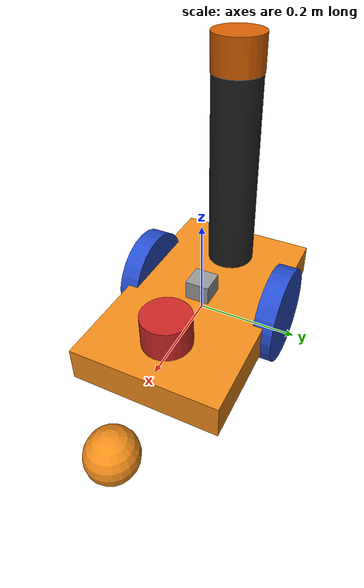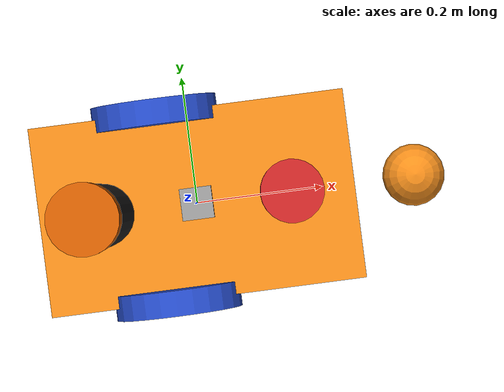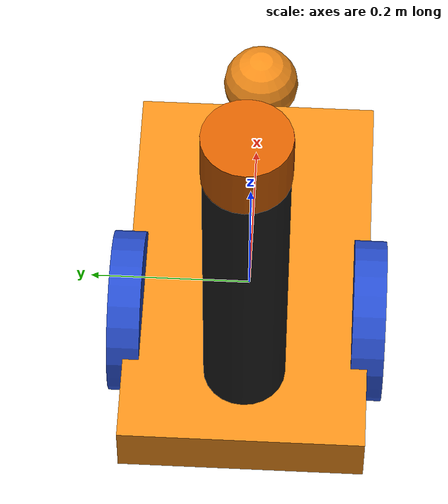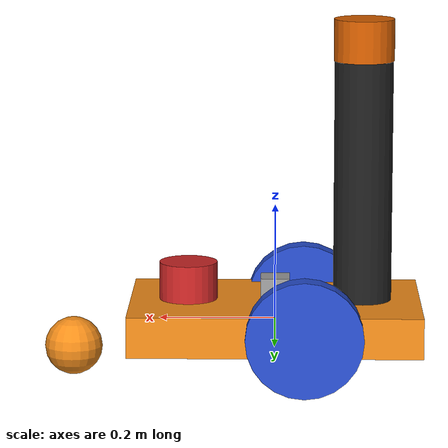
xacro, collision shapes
<?xml version="1.0" ?>
<robot name="m2wr"
    xmlns:xacro="https://www.ros.org/wiki/xacro">

    <!-- /////////////////////////////////////// Importing Urdf/Xacro Dependencies for the robot /////////////////////////////////////////////-->

    <xacro:include filename="$(find m2wr_description)/urdf/materials.xacro"/>
    <xacro:include filename="$(find m2wr_description)/urdf/m2wr.gazebo"/>
    <xacro:include filename="$(find m2wr_description)/urdf/macros.xacro"/>

    <!-- /////////////////////////////////////// Main Body /////////////////////////////////////////////-->
    <!-- CHASSIS -->
    <link name="link_chassis">
        <!-- pose and inertial -->
        <pose>0 0 0.1 0 0 0</pose>
        <inertial name="chassis_inertial">
            <mass value="5"/>
            <origin rpy="0 0 0" xyz="0 0 0.1"/>
            <inertia ixx="0.0395416666667" ixy="0" ixz="0" iyy="0.106208333333" iyz="0" izz="0.106208333333"/>
        </inertial>
        <!-- body -->
        <collision name="collision_chassis">
            <geometry>
                <box size="0.5 0.3 0.07"/>
            </geometry>
        </collision>
        <!-- Naming the visual defaults to white colour -->
        <visual>
            <origin rpy="0 0 0" xyz="0 0 0"/>
            <geometry>
                <box size="0.5 0.3 0.07"/>
            </geometry>
        </visual>
        <!-- FRONT CASTER WHEEL -->
        <inertial name="caster_front_inertial">
            <origin rpy=" 0 0 0" xyz="0.35 0 -0.05"/>
            <mass value="10.0"/>
            <inertia ixx="0.0" ixy="0.0" ixz="0.0" iyy="0.0" iyz="0.0" izz="0.0"/>
        </inertial>
        <collision name="caster_front_collision">
            <origin rpy=" 0 0 0" xyz="0.35 0 -0.05"/>
            <geometry>
                <sphere radius="0.05"/>
            </geometry>
            <surface>
                <friction>
                    <ode>
                        <mu>0</mu>
                        <mu2>0</mu2>
                        <slip1>1.0</slip1>
                        <slip2>1.0</slip2>
                    </ode>
                </friction>
            </surface>
        </collision>
        <visual name="caster_front_visual">
            <origin rpy=" 0 0 0" xyz="0.2 0 -0.05"/>
            <geometry>
                <sphere radius="0.05"/>
            </geometry>
        </visual>
    </link>

    <!-- WHEELS -->
    <xacro:link_wheel name="link_right_wheel"/>
    <xacro:joint_wheel name="joint_right_wheel" child="link_right_wheel" origin_xyz="-0.05 0.15 0"/>

    <xacro:link_wheel name="link_left_wheel"/>
    <xacro:joint_wheel name="joint_left_wheel" child="link_left_wheel" origin_xyz="-0.05 -0.15 0"/>
    <!-- /////////////////////////////////////// Laser Scanner /////////////////////////////////////////////-->
    <link name="sensor_laser">
        <inertial>
            <origin xyz="0 0 0" rpy="0 0 0" />
            <mass value="1" />
            <xacro:cylinder_inertia mass="1" r="0.05" l="0.1" />
        </inertial>

        <visual>
            <origin xyz="0 0 0" rpy="0 0 0" />
            <geometry>
                <cylinder radius="0.05" length="0.1"/>
            </geometry>
        </visual>

        <collision>
            <origin xyz="0 0 0" rpy="0 0 0"/>
            <geometry>
                <cylinder radius="0.05" length="0.1"/>
            </geometry>
        </collision>
    </link>

    <joint name="joint_sensor_laser" type="fixed">
        <origin xyz="0.15 0 0.05" rpy="0 0 0"/>
        <parent link="link_chassis"/>
        <child link="sensor_laser"/>
    </joint>

    <!-- /////////////////////////////////////// Lazdar Lidar /////////////////////////////////////////////-->

    <!-- /////////////////////////////////////// Hokuyo Lidar /////////////////////////////////////////////-->

    <!-- /////////////////////////////////////// Veloddyne VLP-16 Lidar /////////////////////////////////////////////-->

    <xacro:property name="VLP_16_base_radius" value="0.05"/>
    <xacro:property name="VLP_16_base_height" value="0.5"/>

    <!-- Constructing a fake base_link -->
    <joint name="chassis_base_link_joint" type="fixed">
        <parent link="link_chassis"/>
        <child link="base_link"/>
        <origin xyz="-0.15 0 0.05" rpy="0 0 0"/>
    </joint>

    <link name="base_link">
        <inertial>
            <mass value="0.1"/>
            <inertia ixx="${(1/12) * 0.1 * (3 * VLP_16_base_radius * VLP_16_base_radius + VLP_16_base_height * VLP_16_base_height)}" ixy="0" ixz="0" iyy="${(1/12) * 0.1 * (3 * VLP_16_base_radius * VLP_16_base_radius + VLP_16_base_height * VLP_16_base_height)}" iyz="0" izz="${(1/2) * 0.1 * VLP_16_base_radius * VLP_16_base_radius}"/>
        </inertial>
        <visual>
            <origin xyz="0.0 0.0 0.20" rpy="0.0 0.0 0.0"/>
            <geometry>
                <cylinder radius="${VLP_16_base_radius}" length="${VLP_16_base_height}"/>
            </geometry>
        </visual>
        <collision>
            <origin xyz="0.0 0.0 0.20" rpy="0.0 0.0 0.0"/>
            <geometry>
                <cylinder radius="${VLP_16_base_radius}" length="${VLP_16_base_height}"/>
            </geometry>
        </collision>
    </link>

    <!-- Be careful with self-modified lidar -->
    <xacro:arg name="gpu" default="false"/>
    <xacro:property name="gpu" value="$(arg gpu)" />
    <xacro:include filename="$(find velodyne_description)/urdf/VLP-16.urdf.xacro"/>
    <VLP-16 parent="base_link" name="velodyne" topic="/velodyne_points" hz="10" samples="440" gpu="${gpu}">
        <origin xyz="0 0 0.4" rpy="0 0 0" />
    </VLP-16>

    <!-- /////////////////////////////////////// Inertial Measurement Unit /////////////////////////////////////////////-->

    <!-- joint between the link_chassis and the IMU -->
    <joint name="link_chassis_IMU_joint" type="fixed">
        <parent link="link_chassis"/>
        <child link="imu_sensor"/>
        <origin xyz="0.0 0.0 0.05" rpy="0.0 0.0 0.0"/>
    </joint>

    <!-- IMU Sensor Link -->
    <xacro:property name="imu_height" value="0.05"/>
    <xacro:property name="imu_width" value="0.05"/>

    <link name="imu_sensor">
        <inertial>
            <origin xyz="0.0 0.0 1" rpy="0.0 0.0 0.0"/>
            <mass value="1.0"/>
            <inertia ixx="1.0" ixy="0.0" ixz="0.0" iyy="1.0" iyz="0.0" izz="1.0"/>
        </inertial>

        <visual>
            <origin xyz="0.0 0.0 0.0" rpy="0.0 0.0 0.0"/>
            <geometry>
                <box size="${imu_width} ${imu_width} ${imu_height}"/>
            </geometry>
        </visual>

        <collision>
            <origin xyz="0.0 0.0 0.0" rpy="0.0 0.0 0.0"/>
            <geometry>
                <box size="${imu_width} ${imu_width} ${imu_height}"/>
            </geometry>
        </collision>
    </link>

    <!-- ROS Built-in Gazebo IMU Plugin Reference -->
    <gazebo>
        <plugin name="imu_plugin" filename="libgazebo_ros_imu.so">
            <alwaysOn>true</alwaysOn>
            <bodyName>imu_sensor</bodyName>
            <topicName>imu_topic</topicName>
            <serviceName>imu_service</serviceName>
            <gaussianNoise>0.0</gaussianNoise>
            <updateRate>20</updateRate>
        </plugin>
    </gazebo>
</robot>

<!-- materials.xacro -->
<robot>
    <material name="black">
        <color rgba="0.0 0.0 0.0 1.0"/>
    </material>
    <material name="blue">
        <color rgba="0.203125 0.23828125 0.28515625 1.0"/>
    </material>
    <material name="green">
        <color rgba="0.0 0.8 0.0 1.0"/>
    </material>
    <material name="grey">
        <color rgba="0.2 0.2 0.2 1.0"/>
    </material>
    <material name="orange">
        <color rgba="1.0 0.423529411765 0.0392156862745 1.0"/>
    </material>
    <material name="brown">
        <color rgba="0.870588235294 0.811764705882 0.764705882353 1.0"/>
    </material>
    <material name="red">
        <color rgba="0.80078125 0.12890625 0.1328125 1.0"/>
    </material>
    <material name="white">
        <color rgba="1.0 1.0 1.0 1.0"/>
    </material>
</robot>

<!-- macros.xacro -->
<robot>
    <!-- /////////////////////////////////////// LINKS /////////////////////////////////////// -->
    <!-- LINK_WHEEL MACRO -->
    <macro name="link_wheel" params="name">
        <link name="${name}">
            <inertial>
                <mass value="0.2"/>
                <origin rpy="0 1.5707 1.5707" xyz="0 0 0"/>
                <inertia ixx="0.000526666666667" ixy="0" ixz="0" iyy="0.000526666666667" iyz="0" izz="0.001"/>
            </inertial>
            <collision name="${name}_collision">
                <origin rpy="0 1.5707 1.5707" xyz="0 0 0"/>
                <geometry>
                    <cylinder length="0.04" radius="0.1"/>
                </geometry>
            </collision>
            <visual name="${name}_visual">
                <origin rpy="0 1.5707 1.5707" xyz="0 0 0"/>
                <geometry>
                    <cylinder length="0.04" radius="0.1"/>
                </geometry>
            </visual>
        </link>
    </macro>
    <!-- JOINT_WHEEL MACRO -->
    <macro name="joint_wheel" params="name child origin_xyz">
        <joint name="${name}" type="continuous">
            <origin rpy="0 0 0" xyz="${origin_xyz}"/>
            <child link="${child}"/>
            <parent link="link_chassis"/>
            <axis rpy="0 0 0" xyz="0 1 0"/>
            <limit effort="10000" velocity="1000"/>
            <joint_properties damping="1.0" friction="1.0"/>
        </joint>
    </macro>

    <macro name="cylinder_inertia" params="mass r l">
        <inertia ixx ="${mass*(3*r*r+l*l)/12}" ixy = "0" ixz="0"
                 iyy ="${mass*(3*r*r+l*l)/12}" iyz="0"
                 izz ="${mass*(3*r*r+l*l)/12}" />
    </macro>

    <!-- /////////////////////////////////////// LASER SENSOR GAZEBO PLUGIN /////////////////////////////////////// -->

</robot>

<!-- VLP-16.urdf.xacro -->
<robot xmlns:xacro="http://www.ros.org/wiki/xacro" name="VLP-16">
  <xacro:property name="M_PI" value="3.1415926535897931" />
  <xacro:macro name="VLP-16" params="*origin is_sim:=true parent:=base_link name:=velodyne tf_prefix:='' topic:=/velodyne_points organize_cloud:=false hz:=10 lasers:=16 samples:=1875 collision_range:=0.3 min_range:=0.0 max_range:=100.0 noise:=0.008 min_angle:=-${M_PI} max_angle:=${M_PI} gpu:=false">

    <joint name="${name}_base_mount_joint" type="fixed">
      <xacro:insert_block name="origin" />
      <parent link="${parent}"/>
      <child link="${name}_base_link"/>
    </joint>

    <link name="${name}_base_link">
      <inertial>
        <mass value="0.83"/>
        <origin xyz="0 0 0.03585"/>
        <inertia ixx="${(0.83 * (3.0*0.0516*0.0516 + 0.0717*0.0717)) / 12.0}" ixy="0" ixz="0"
          iyy="${(0.83 * (3.0*0.0516*0.0516 + 0.0717*0.0717)) / 12.0}" iyz="0"
          izz="${0.5 * 0.83 * (0.0516*0.0516)}"/>
      </inertial>
      <visual>
        <geometry>
          <mesh filename="package://velodyne_description/meshes/VLP16_base_1.dae" />
        </geometry>
      </visual>
      <visual>
        <geometry>
          <mesh filename="package://velodyne_description/meshes/VLP16_base_2.dae" />
        </geometry>
      </visual>
      <collision>
        <origin rpy="0 0 0" xyz="0 0 0.03585"/>
        <geometry>
          <cylinder radius="0.0516" length="0.0717"/>
        </geometry>
      </collision>
    </link>

    <joint name="${name}_base_scan_joint" type="fixed" >
      <origin xyz="0 0 0.0377" rpy="0 0 0" />
      <parent link="${name}_base_link" />
      <child link="${name}"/>
    </joint>

    <link name="${name}">
      <inertial>
        <mass value="0.01"/>
        <origin xyz="0 0 0"/>
        <inertia ixx="1e-7" ixy="0" ixz="0" iyy="1e-7" iyz="0" izz="1e-7"/>
      </inertial>
      <visual>
        <origin xyz="0 0 -0.0377" />
        <geometry>
          <mesh filename="package://velodyne_description/meshes/VLP16_scan.dae" />
        </geometry>
      </visual>
      <collision>
        <geometry>
          <sphere radius="0"/>
        </geometry>
      </collision>
    </link>

    <!-- Gazebo requires the velodyne_gazebo_plugins package -->
    <xacro:if value="${is_sim}">
        <gazebo reference="${name}">
            <xacro:if value="${gpu}">
                <sensor type="gpu_ray" name="${name}-VLP16">
                <pose>0 0 0 0 0 0</pose>
                <visualize>false</visualize>
                <update_rate>${hz}</update_rate>
                <ray>
                    <scan>
                    <horizontal>
                        <samples>${samples}</samples>
                        <resolution>1</resolution>
                        <min_angle>${min_angle}</min_angle>
                        <max_angle>${max_angle}</max_angle>
                    </horizontal>
                    <vertical>
                        <samples>${lasers}</samples>
                        <resolution>1</resolution>
                        <min_angle>-${15.0*M_PI/180.0}</min_angle>
                        <max_angle> ${15.0*M_PI/180.0}</max_angle>
                    </vertical>
                    </scan>
                    <range>
                    <min>${collision_range}</min>
                    <max>${max_range+1}</max>
                    <resolution>0.001</resolution>
                    </range>
                    <noise>
                    <type>gaussian</type>
                    <mean>0.0</mean>
                    <stddev>0.0</stddev>
                    </noise>
                </ray>
                <plugin name="gazebo_ros_laser_controller" filename="libgazebo_ros_velodyne_laser.so">
                    <ros>
                    <namespace>/${name}</namespace>
                    <remapping>~/out:=${topic}</remapping>
                    </ros>
                    <tf_prefix>${tf_prefix}</tf_prefix>
                    <frame_name>${name}</frame_name>
                    <organize_cloud>${organize_cloud}</organize_cloud>
                    <min_range>${min_range}</min_range>
                    <max_range>${max_range}</max_range>
                    <gaussian_noise>${noise}</gaussian_noise>
                </plugin>
                </sensor>
            </xacro:if>
            <xacro:unless value="${gpu}">
                <sensor type="ray" name="${name}-VLP16">
                <pose>0 0 0 0 0 0</pose>
                <visualize>false</visualize>
                <update_rate>${hz}</update_rate>
                <ray>
                    <scan>
                    <horizontal>
                        <samples>${samples}</samples>
                        <resolution>1</resolution>
                        <min_angle>${min_angle}</min_angle>
                        <max_angle>${max_angle}</max_angle>
                    </horizontal>
                    <vertical>
                        <samples>${lasers}</samples>
                        <resolution>1</resolution>
                        <min_angle>-${15.0*M_PI/180.0}</min_angle>
                        <max_angle> ${15.0*M_PI/180.0}</max_angle>
                    </vertical>
                    </scan>
                    <range>
                    <min>${collision_range}</min>
                    <max>${max_range+1}</max>
                    <resolution>0.001</resolution>
                    </range>
                    <noise>
                    <type>gaussian</type>
                    <mean>0.0</mean>
                    <stddev>0.0</stddev>
                    </noise>
                </ray>
                <plugin name="gazebo_ros_laser_controller" filename="libgazebo_ros_velodyne_laser.so">
                    <ros>
                    <namespace>/${name}</namespace>
                    <remapping>~/out:=${topic}</remapping>
                    </ros>
                    <tf_prefix>${tf_prefix}</tf_prefix>
                    <frame_name>${name}</frame_name>
                    <organize_cloud>${organize_cloud}</organize_cloud>
                    <min_range>${min_range}</min_range>
                    <max_range>${max_range}</max_range>
                    <gaussian_noise>${noise}</gaussian_noise>
                </plugin>
                </sensor>
            </xacro:unless>
        </gazebo>
    </xacro:if>

  </xacro:macro>
</robot>
